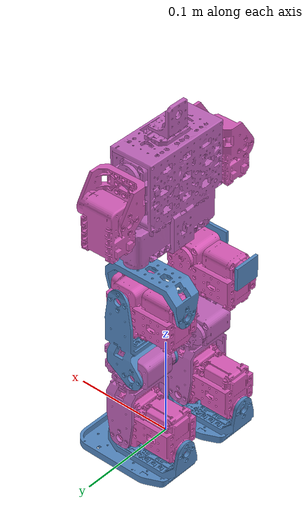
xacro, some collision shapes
<?xml version="1.0"?>
<robot xmlns:xacro="http://www.ros.org/wiki/xacro" name="bioloid">
    <xacro:arg name="initial_positions_file" default="$(find alfan_robot_description)/bioloid/config/initial_positions.yaml" />

    <xacro:include filename="bioloid.urdf" />
    <xacro:include filename="bioloid.ros2_control.xacro" />

    <xacro:bioloid_ros2_control name="GazeboROS2" initial_positions_file="$(arg initial_positions_file)"/>

    <gazebo>
        <plugin filename="ign_ros2_control-system" name="ign_ros2_control::IgnitionROS2ControlPlugin">
            <parameters>$(find alfan_robot_description)/bioloid/config/ros2_controllers.yaml</parameters>
        </plugin>
    </gazebo>

    <xacro:macro name="foot_friction" params="link_name">
        <gazebo reference="${link_name}">
            <mu1>100.0</mu1>
            <mu2>100.0</mu2>
            <kp>1000000.0</kp>
            <kd>100.0</kd>
            <minDepth>0.001</minDepth>
        </gazebo>
    </xacro:macro>

    <xacro:foot_friction link_name="l_sole"/>
    <xacro:foot_friction link_name="r_sole"/>
</robot>

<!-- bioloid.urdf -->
<!-- Generated using onshape-to-robot -->
<!-- Onshape https://cad.onshape.com/documents/1c182306dbc4101e18ae5ca0/w/b74496f5b7503cb5494d98c0/e/4ab3c407fbcfb1f86902050d -->
<robot name="bioloid">
  <!-- Dummy base link -->
  <link name="base_link"></link>

  <joint name="base_link_to_body" type="fixed">
    <parent link="base_link"/>
    <child link="body"/>
    <origin xyz="0 0 0" rpy="0 0 0"/>
  </joint>

  <!-- Link body -->
  <link name="body">
    <inertial>
      <origin xyz="-0.00120188 -4.0722e-07 0.266324" rpy="0 0 0"/>
      <mass value="0.303775"/>
      <inertia ixx="0.000572103" ixy="-1.63329e-07" ixz="2.25209e-06" iyy="0.000354825" iyz="-4.256e-09" izz="0.000287296"/>
    </inertial>
    <!-- Part body_parts -->
    <collision>
      <origin xyz="-0.00111963 0.0289345 0.28962" rpy="0 0 3.14159"/>
      <geometry>
        <box size="0.0320858 0.0399725 0.0485"/>
      </geometry>
    </collision>
    <collision>
      <origin xyz="-0.00113443 -0.0289345 0.28962" rpy="-0 -0 -0"/>
      <geometry>
        <box size="0.0320858 0.0399725 0.0485"/>
      </geometry>
    </collision>
    <collision>
      <origin xyz="-0.015627 -0 0.231855" rpy="-1.5708 0 1.5708"/>
      <geometry>
        <box size="0.025 0.0381517 0.009"/>
      </geometry>
    </collision>
    <collision>
      <origin xyz="0.013373 -0 0.231885" rpy="1.5708 0 1.5708"/>
      <geometry>
        <box size="0.025 0.0381517 0.009"/>
      </geometry>
    </collision>
    <collision>
      <origin xyz="-0.00188943 4.025e-05 0.31937" rpy="-0 0 1.5708"/>
      <geometry>
        <box size="0.0901071 0.042557 0.003"/>
      </geometry>
    </collision>
    <collision>
      <origin xyz="-0.021627 -1.65e-06 0.287876" rpy="1.5708 -0 -1.5708"/>
      <geometry>
        <box size="0.0900599 0.0660896 0.003"/>
      </geometry>
    </collision>
    <collision>
      <origin xyz="-0.015627 0.0280155 0.28787" rpy="-0 -1.5708 0"/>
      <geometry>
        <box size="0.025 0.0381517 0.009"/>
      </geometry>
    </collision>
    <collision>
      <origin xyz="-0.00111963 0.02575 0.230935" rpy="1.5708 0 3.14159"/>
      <geometry>
        <box size="0.0320858 0.0399725 0.0485"/>
      </geometry>
    </collision>
    <collision>
      <origin xyz="-0.00161443 -1.3e-05 0.33987" rpy="-3.14159 0 3.14159"/>
      <geometry>
        <box size="0.0241194 0.0240894 0.03"/>
      </geometry>
    </collision>
    <collision>
      <origin xyz="-0.015627 -0.0279846 0.28787" rpy="-0 -1.5708 0"/>
      <geometry>
        <box size="0.025 0.0381517 0.009"/>
      </geometry>
    </collision>
    <collision>
      <origin xyz="0.013373 -0.0280155 0.28787" rpy="3.14159 -1.5708 0"/>
      <geometry>
        <box size="0.025 0.0381517 0.009"/>
      </geometry>
    </collision>
    <collision>
      <origin xyz="-0.00113443 -0.02575 0.230935" rpy="1.5708 -0 -0"/>
      <geometry>
        <box size="0.0320858 0.0399725 0.0485"/>
      </geometry>
    </collision>
    <collision>
      <origin xyz="-0.00116153 1.5e-06 0.25637" rpy="3.14159 0 1.5708"/>
      <geometry>
        <box size="0.0900476 0.0440744 0.003"/>
      </geometry>
    </collision>
    <collision>
      <origin xyz="0.019373 -9.6e-06 0.28788" rpy="1.5708 0 1.5708"/>
      <geometry>
        <box size="0.0900478 0.0660478 0.003"/>
      </geometry>
    </collision>
    <collision>
      <origin xyz="0.013373 0.0279846 0.28787" rpy="3.14159 -1.5708 0"/>
      <geometry>
        <box size="0.025 0.0381517 0.009"/>
      </geometry>
    </collision>
    <visual>
      <origin xyz="-0.00120188 -4.0722e-07 0.266324" rpy="0 -0 0"/>
      <geometry>
        <mesh filename="file://$(find alfan_robot_description)/bioloid/mesh/body_visual.stl"/>
      </geometry>
      <material name="body_parts_material">
        <color rgba="0.745822 0.387408 0.72454 1"/>
      </material>
    </visual>
  </link>
  <!-- Link fp04_f5x -->
  <link name="fp04_f5x">
    <inertial>
      <origin xyz="-0.0164849 -2.32967e-06 -0.010064" rpy="0 0 0"/>
      <mass value="0.0119051"/>
      <inertia ixx="2.25504e-06" ixy="-3.9e-11" ixz="-8.4526e-08" iyy="1.1241e-05" iyz="1.57e-10" izz="1.07465e-05"/>
    </inertial>
    <!-- Part fp04_f5x_parts -->
    <collision>
      <origin xyz="-0.05475 -0.0004626 -0.028525" rpy="-1.5708 0 1.5708"/>
      <geometry>
        <box size="0.0270748 0.0230499 0.003"/>
      </geometry>
    </collision>
    <collision>
      <origin xyz="0.02075 -0 -0.0284861" rpy="1.5708 0 1.5708"/>
      <geometry>
        <box size="0.028 0.0229723 0.003"/>
      </geometry>
    </collision>
    <collision>
      <origin xyz="-0.0170048 -8.4e-06 -0.0085" rpy="0 0 1.5708"/>
      <geometry>
        <box size="0.0281538 0.0785552 0.017"/>
      </geometry>
    </collision>
    <visual>
      <origin xyz="-0.0164849 -2.32967e-06 -0.010064" rpy="-0 0 0"/>
      <geometry>
        <mesh filename="file://$(find alfan_robot_description)/bioloid/mesh/fp04_f5x_visual.stl"/>
      </geometry>
      <material name="fp04_f5x_parts_material">
        <color rgba="0.32549 0.529412 0.752941 1"/>
      </material>
    </visual>
  </link>
  <!-- Link l_hip_block -->
  <link name="l_hip_block">
    <inertial>
      <origin xyz="-0.000453911 -0.0127839 0.0365969" rpy="0 0 0"/>
      <mass value="0.121692"/>
      <inertia ixx="6.79791e-05" ixy="1.59902e-07" ixz="9.53699e-07" iyy="5.80918e-05" iyz="-4.02641e-07" izz="3.26705e-05"/>
    </inertial>
    <!-- Part l_hip_block_parts -->
    <collision>
      <origin xyz="-0.00093455 -0.01275 0.0528626" rpy="-1.5708 -1.5708 0"/>
      <geometry>
        <box size="0.0320858 0.0399725 0.0485"/>
      </geometry>
    </collision>
    <collision>
      <origin xyz="7.4e-06 -0.01275 0.0199355" rpy="1.5708 0 3.14159"/>
      <geometry>
        <box size="0.0320858 0.0399725 0.0485"/>
      </geometry>
    </collision>
    <visual>
      <origin xyz="-0.000453911 -0.0127839 0.0365969" rpy="-1.5708 -1.5708 0"/>
      <geometry>
        <mesh filename="file://$(find alfan_robot_description)/bioloid/mesh/l_hip_block_visual.stl"/>
      </geometry>
      <material name="l_hip_block_parts_material">
        <color rgba="0.850118 0.352173 0.717493 1"/>
      </material>
    </visual>
  </link>
  <!-- Link l_hip_to_knee -->
  <link name="l_hip_to_knee">
    <inertial>
      <origin xyz="-0.0433631 -0.00102425 0.0210296" rpy="0 0 0"/>
      <mass value="0.0231462"/>
      <inertia ixx="1.05716e-05" ixy="-9.76682e-07" ixz="2.1584e-08" iyy="1.91767e-05" iyz="9.213e-09" izz="1.27012e-05"/>
    </inertial>
    <!-- Part l_hip_to_knee_parts -->
    <collision>
      <origin xyz="-0.0213674 2.325e-05 -0.0015" rpy="-3.14159 -0 0"/>
      <geometry>
        <box size="0.0647975 0.0291169 0.003"/>
      </geometry>
    </collision>
    <collision>
      <origin xyz="-0.0213559 4.28e-05 0.0435" rpy="0 -0 0"/>
      <geometry>
        <box size="0.0648201 0.0290856 0.003"/>
      </geometry>
    </collision>
    <collision>
      <origin xyz="-0.04585 -3.085e-05 0.0210432" rpy="0 -1.5708 0"/>
      <geometry>
        <box size="0.0480903 0.0290617 0.0157"/>
      </geometry>
    </collision>
    <collision>
      <origin xyz="-0.0545 -0.0013278 0.0209309" rpy="-3.14159 -1.5708 0"/>
      <geometry>
        <box size="0.0483203 0.0276556 0.005"/>
      </geometry>
    </collision>
    <collision>
      <origin xyz="-0.0715293 -0.0065266 -0.0015" rpy="-3.14159 0 -3.14159"/>
      <geometry>
        <box size="0.0290586 0.0380532 0.003"/>
      </geometry>
    </collision>
    <collision>
      <origin xyz="-0.071555 -0.006504 0.0435" rpy="0 0 -3.14159"/>
      <geometry>
        <box size="0.0291101 0.038008 0.003"/>
      </geometry>
    </collision>
    <visual>
      <origin xyz="-0.0433631 -0.00102425 0.0210296" rpy="1.5708 -0 1.5708"/>
      <geometry>
        <mesh filename="file://$(find alfan_robot_description)/bioloid/mesh/l_hip_to_knee_visual.stl"/>
      </geometry>
      <material name="l_hip_to_knee_parts_material">
        <color rgba="0.32549 0.529412 0.752941 1"/>
      </material>
    </visual>
  </link>
  <!-- Link l_tibia -->
  <link name="l_tibia">
    <inertial>
      <origin xyz="-0.00969738 0.0133445 0.0201093" rpy="0 0 0"/>
      <mass value="0.0748651"/>
      <inertia ixx="2.35681e-05" ixy="1.14448e-06" ixz="5.48612e-07" iyy="4.15403e-05" iyz="-1.7789e-07" izz="4.13557e-05"/>
    </inertial>
    <!-- Part l_tibia_parts -->
    <collision>
      <origin xyz="-7.4e-06 0.01275 0.0199355" rpy="1.5708 0 -0"/>
      <geometry>
        <box size="0.0320858 0.0399725 0.0485"/>
      </geometry>
    </collision>
    <collision>
      <origin xyz="-0.0536326 0.0145232 0.04337" rpy="0 0 -3.14159"/>
      <geometry>
        <box size="0.0647975 0.0291169 0.003"/>
      </geometry>
    </collision>
    <collision>
      <origin xyz="-0.053644 0.0145428 -0.00163" rpy="-3.14159 0 -3.14159"/>
      <geometry>
        <box size="0.0648201 0.0290856 0.003"/>
      </geometry>
    </collision>
    <collision>
      <origin xyz="-0.02915 0.0144692 0.0208269" rpy="-0 1.5708 0"/>
      <geometry>
        <box size="0.0480903 0.0290617 0.0157"/>
      </geometry>
    </collision>
    <collision>
      <origin xyz="-0.0145 0.0145 0.0208854" rpy="1.5708 -0 -1.5708"/>
      <geometry>
        <box size="0.025 0.0381517 0.009"/>
      </geometry>
    </collision>
    <visual>
      <origin xyz="-0.00969738 0.0133445 0.0201093" rpy="1.5708 -0 1.5708"/>
      <geometry>
        <mesh filename="file://$(find alfan_robot_description)/bioloid/mesh/l_tibia_visual.stl"/>
      </geometry>
      <material name="l_tibia_parts_material">
        <color rgba="0.751878 0.385362 0.724131 1"/>
      </material>
    </visual>
  </link>
  <!-- Link l_ankle_block -->
  <link name="l_ankle_block">
    <inertial>
      <origin xyz="0.0127839 -0.0162449 0.0203879" rpy="0 0 0"/>
      <mass value="0.121692"/>
      <inertia ixx="5.82e-05" ixy="3.74759e-07" ixz="-1.3202e-07" iyy="3.26673e-05" iyz="8.98168e-07" izz="6.80905e-05"/>
    </inertial>
    <!-- Part l_ankle_block_parts -->
    <collision>
      <origin xyz="0.01275 7.4e-06 0.0199355" rpy="1.5708 -0 -1.5708"/>
      <geometry>
        <box size="0.0320858 0.0399725 0.0485"/>
      </geometry>
    </collision>
    <collision>
      <origin xyz="0.01275 -0.0329345 0.0208626" rpy="-0 -1.5708 0"/>
      <geometry>
        <box size="0.0320858 0.0399725 0.0485"/>
      </geometry>
    </collision>
    <visual>
      <origin xyz="0.0127839 -0.0162449 0.0203879" rpy="1.5708 -0 1.5708"/>
      <geometry>
        <mesh filename="file://$(find alfan_robot_description)/bioloid/mesh/l_ankle_block_visual.stl"/>
      </geometry>
      <material name="l_ankle_block_parts_material">
        <color rgba="0.850118 0.352173 0.717493 1"/>
      </material>
    </visual>
  </link>
  <!-- Link l_sole -->
  <link name="l_sole">
    <inertial>
      <origin xyz="8.12943e-07 -0.0258295 0.0485395" rpy="0 0 0"/>
      <mass value="0.033975"/>
      <inertia ixx="3.30012e-05" ixy="2e-12" ixz="3.78e-10" iyy="3.93212e-05" iyz="1.50405e-06" izz="1.09902e-05"/>
    </inertial>
    <!-- Part l_sole_parts -->
    <collision>
      <origin xyz="0.0004626 -0.00047505 -0.0015" rpy="3.14159 -0 -3.14159"/>
      <geometry>
        <box size="0.0270748 0.0230499 0.003"/>
      </geometry>
    </collision>
    <collision>
      <origin xyz="0 -0.00051385 0.074" rpy="-0 -0 -3.14159"/>
      <geometry>
        <box size="0.028 0.0229723 0.003"/>
      </geometry>
    </collision>
    <collision>
      <origin xyz="8.4e-06 -0.0205 0.0362452" rpy="-1.5708 -0 -3.14159"/>
      <geometry>
        <box size="0.0281538 0.0785552 0.017"/>
      </geometry>
    </collision>
    <collision>
      <origin xyz="-1.42e-05 -0.02775 0.0532916" rpy="1.5708 1.5708 0"/>
      <geometry>
        <box size="0.100134 0.0602914 0.0085"/>
      </geometry>
    </collision>
    <visual>
      <origin xyz="8.12943e-07 -0.0258295 0.0485395" rpy="-1.5708 -1.5708 0"/>
      <geometry>
        <mesh filename="file://$(find alfan_robot_description)/bioloid/mesh/l_sole_visual.stl"/>
      </geometry>
      <material name="l_sole_parts_material">
        <color rgba="0.32549 0.529412 0.752941 1"/>
      </material>
    </visual>
  </link>
  <!-- Joint from l_ankle_block to l_sole -->
  <joint name="l_ankle_roll" type="revolute">
    <origin xyz="-0 -0.05287 0.02087" rpy="-1.5708 -1.5708 0"/>
    <parent link="l_ankle_block"/>
    <child link="l_sole"/>
    <axis xyz="0 0 1"/>
    <limit effort="10" velocity="10" lower="-1.01229" upper="1.01229"/>
  </joint>
  <!-- Joint from l_tibia to l_ankle_block -->
  <joint name="l_ankle_pitch" type="revolute">
    <origin xyz="-0.075 0.0145 -0.00013" rpy="-0 -0 -0"/>
    <parent link="l_tibia"/>
    <child link="l_ankle_block"/>
    <axis xyz="0 0 1"/>
    <limit effort="10" velocity="10" lower="-1.5708" upper="0.436332"/>
  </joint>
  <!-- Joint from l_hip_to_knee to l_tibia -->
  <joint name="l_knee" type="revolute">
    <origin xyz="-0.075 -0.0145 -0" rpy="-0 0 -0"/>
    <parent link="l_hip_to_knee"/>
    <child link="l_tibia"/>
    <axis xyz="0 0 1"/>
    <limit effort="10" velocity="10" lower="0" upper="2.61799"/>
  </joint>
  <!-- Joint from l_hip_block to l_hip_to_knee -->
  <joint name="l_hip_pitch" type="revolute">
    <origin xyz="-0.02087 0 0.05287" rpy="1.5708 0 1.5708"/>
    <parent link="l_hip_block"/>
    <child link="l_hip_to_knee"/>
    <axis xyz="0 0 1"/>
    <limit effort="10" velocity="10" lower="-2.35619" upper="0.436332"/>
  </joint>
  <!-- Joint from fp04_f5x to l_hip_block -->
  <joint name="l_hip_roll" type="revolute">
    <origin xyz="-0.05325 -0 -0.029" rpy="1.5708 4e-12 1.5708"/>
    <parent link="fp04_f5x"/>
    <child link="l_hip_block"/>
    <axis xyz="0 0 1"/>
    <limit effort="10" velocity="10" lower="-1.01229" upper="1.01229"/>
  </joint>
  <!-- Joint from body to fp04_f5x -->
  <joint name="l_hip_yaw" type="revolute">
    <origin xyz="-0.00112703 0.0385 0.211" rpy="0 -0 -0"/>
    <parent link="body"/>
    <child link="fp04_f5x"/>
    <axis xyz="0 0 1"/>
    <limit effort="10" velocity="10" lower="-1.5708" upper="0.959931"/>
  </joint>
  <!-- Link fp04_f5x_2 -->
  <link name="fp04_f5x_2">
    <inertial>
      <origin xyz="-0.0164849 -2.32967e-06 -0.010064" rpy="0 0 0"/>
      <mass value="0.0119051"/>
      <inertia ixx="2.25504e-06" ixy="-3.9e-11" ixz="-8.4526e-08" iyy="1.1241e-05" iyz="1.57e-10" izz="1.07465e-05"/>
    </inertial>
    <!-- Part fp04_f5x_2_parts -->
    <collision>
      <origin xyz="-0.05475 -0.0004626 -0.028525" rpy="-1.5708 0 1.5708"/>
      <geometry>
        <box size="0.0270748 0.0230499 0.003"/>
      </geometry>
    </collision>
    <collision>
      <origin xyz="0.02075 0 -0.0284861" rpy="1.5708 0 1.5708"/>
      <geometry>
        <box size="0.028 0.0229723 0.003"/>
      </geometry>
    </collision>
    <collision>
      <origin xyz="-0.0170048 -8.4e-06 -0.0085" rpy="-0 0 1.5708"/>
      <geometry>
        <box size="0.0281538 0.0785552 0.017"/>
      </geometry>
    </collision>
    <visual>
      <origin xyz="-0.0164849 -2.32967e-06 -0.010064" rpy="0 0 0"/>
      <geometry>
        <mesh filename="file://$(find alfan_robot_description)/bioloid/mesh/fp04_f5x_2_visual.stl"/>
      </geometry>
      <material name="fp04_f5x_2_parts_material">
        <color rgba="0.32549 0.529412 0.752941 1"/>
      </material>
    </visual>
  </link>
  <!-- Link r_hip_block -->
  <link name="r_hip_block">
    <inertial>
      <origin xyz="0.000482063 -0.0127839 0.0366251" rpy="0 0 0"/>
      <mass value="0.121692"/>
      <inertia ixx="6.80905e-05" ixy="-1.3202e-07" ixz="-8.98168e-07" iyy="5.82e-05" iyz="-3.74759e-07" izz="3.26673e-05"/>
    </inertial>
    <!-- Part r_hip_block_parts -->
    <collision>
      <origin xyz="0.00093455 -0.01275 0.0528774" rpy="-1.5708 1.5708 0"/>
      <geometry>
        <box size="0.0320858 0.0399725 0.0485"/>
      </geometry>
    </collision>
    <collision>
      <origin xyz="7.4e-06 -0.01275 0.0199355" rpy="1.5708 0 3.14159"/>
      <geometry>
        <box size="0.0320858 0.0399725 0.0485"/>
      </geometry>
    </collision>
    <visual>
      <origin xyz="0.000482063 -0.0127839 0.0366251" rpy="-1.5708 -1.5708 0"/>
      <geometry>
        <mesh filename="file://$(find alfan_robot_description)/bioloid/mesh/r_hip_block_visual.stl"/>
      </geometry>
      <material name="r_hip_block_parts_material">
        <color rgba="0.850118 0.352173 0.717493 1"/>
      </material>
    </visual>
  </link>
  <!-- Link r_hip_to_knee -->
  <link name="r_hip_to_knee">
    <inertial>
      <origin xyz="-0.0433631 -0.00102425 -0.0209704" rpy="0 0 0"/>
      <mass value="0.0231462"/>
      <inertia ixx="1.05716e-05" ixy="-9.76682e-07" ixz="2.1584e-08" iyy="1.91767e-05" iyz="9.213e-09" izz="1.27012e-05"/>
    </inertial>
    <!-- Part r_hip_to_knee_parts -->
    <collision>
      <origin xyz="-0.0213674 2.325e-05 -0.0435" rpy="-3.14159 -0 -0"/>
      <geometry>
        <box size="0.0647975 0.0291169 0.003"/>
      </geometry>
    </collision>
    <collision>
      <origin xyz="-0.0213559 4.28e-05 0.0015" rpy="0 -0 -0"/>
      <geometry>
        <box size="0.0648201 0.0290856 0.003"/>
      </geometry>
    </collision>
    <collision>
      <origin xyz="-0.04585 -3.085e-05 -0.0209568" rpy="-0 -1.5708 0"/>
      <geometry>
        <box size="0.0480903 0.0290617 0.0157"/>
      </geometry>
    </collision>
    <collision>
      <origin xyz="-0.0545 -0.0013278 -0.0210691" rpy="-3.14159 -1.5708 0"/>
      <geometry>
        <box size="0.0483203 0.0276556 0.005"/>
      </geometry>
    </collision>
    <collision>
      <origin xyz="-0.0715293 -0.0065266 -0.0435" rpy="3.14159 0 -3.14159"/>
      <geometry>
        <box size="0.0290586 0.0380532 0.003"/>
      </geometry>
    </collision>
    <collision>
      <origin xyz="-0.071555 -0.006504 0.0015" rpy="-0 0 -3.14159"/>
      <geometry>
        <box size="0.0291101 0.038008 0.003"/>
      </geometry>
    </collision>
    <visual>
      <origin xyz="-0.0433631 -0.00102425 -0.0209704" rpy="1.5708 -0 1.5708"/>
      <geometry>
        <mesh filename="file://$(find alfan_robot_description)/bioloid/mesh/r_hip_to_knee_visual.stl"/>
      </geometry>
      <material name="r_hip_to_knee_parts_material">
        <color rgba="0.32549 0.529412 0.752941 1"/>
      </material>
    </visual>
  </link>
  <!-- Link r_tibia -->
  <link name="r_tibia">
    <inertial>
      <origin xyz="-0.00965162 0.0133445 -0.0201093" rpy="0 0 0"/>
      <mass value="0.0748651"/>
      <inertia ixx="2.35681e-05" ixy="1.11852e-06" ixz="-5.5332e-07" iyy="4.16065e-05" iyz="1.77886e-07" izz="4.14219e-05"/>
    </inertial>
    <!-- Part r_tibia_parts -->
    <collision>
      <origin xyz="7.4e-06 0.01275 -0.0199355" rpy="-1.5708 0 -3.14159"/>
      <geometry>
        <box size="0.0320858 0.0399725 0.0485"/>
      </geometry>
    </collision>
    <collision>
      <origin xyz="-0.0145 0.0145 -0.0208545" rpy="1.5708 -0 -1.5708"/>
      <geometry>
        <box size="0.025 0.0381517 0.009"/>
      </geometry>
    </collision>
    <collision>
      <origin xyz="-0.0536326 0.0145232 0.00163" rpy="-0 -0 3.14159"/>
      <geometry>
        <box size="0.0647975 0.0291169 0.003"/>
      </geometry>
    </collision>
    <collision>
      <origin xyz="-0.053644 0.0145428 -0.04337" rpy="3.14159 -0 3.14159"/>
      <geometry>
        <box size="0.0648201 0.0290856 0.003"/>
      </geometry>
    </collision>
    <collision>
      <origin xyz="-0.02915 0.0144692 -0.0209131" rpy="0 1.5708 0"/>
      <geometry>
        <box size="0.0480903 0.0290617 0.0157"/>
      </geometry>
    </collision>
    <visual>
      <origin xyz="-0.00965162 0.0133445 -0.0201093" rpy="1.5708 -0 1.5708"/>
      <geometry>
        <mesh filename="file://$(find alfan_robot_description)/bioloid/mesh/r_tibia_visual.stl"/>
      </geometry>
      <material name="r_tibia_parts_material">
        <color rgba="0.751878 0.385362 0.724131 1"/>
      </material>
    </visual>
  </link>
  <!-- Link r_ankle_block -->
  <link name="r_ankle_block">
    <inertial>
      <origin xyz="0.0127839 -0.0162731 -0.0204161" rpy="0 0 0"/>
      <mass value="0.121692"/>
      <inertia ixx="5.80918e-05" ixy="4.02641e-07" ixz="1.59902e-07" iyy="3.26705e-05" iyz="-9.53699e-07" izz="6.79791e-05"/>
    </inertial>
    <!-- Part r_ankle_block_parts -->
    <collision>
      <origin xyz="0.01275 -7.4e-06 -0.0199355" rpy="-1.5708 -0 1.5708"/>
      <geometry>
        <box size="0.0320858 0.0399725 0.0485"/>
      </geometry>
    </collision>
    <collision>
      <origin xyz="0.01275 -0.0329345 -0.0208774" rpy="-0 -1.5708 0"/>
      <geometry>
        <box size="0.0320858 0.0399725 0.0485"/>
      </geometry>
    </collision>
    <visual>
      <origin xyz="0.0127839 -0.0162731 -0.0204161" rpy="1.5708 -0 1.5708"/>
      <geometry>
        <mesh filename="file://$(find alfan_robot_description)/bioloid/mesh/r_ankle_block_visual.stl"/>
      </geometry>
      <material name="r_ankle_block_parts_material">
        <color rgba="0.850118 0.352173 0.717493 1"/>
      </material>
    </visual>
  </link>
  <!-- Link r_sole -->
  <link name="r_sole">
    <inertial>
      <origin xyz="8.12943e-07 0.0258295 -0.0485395" rpy="0 0 0"/>
      <mass value="0.033975"/>
      <inertia ixx="3.30012e-05" ixy="-2e-12" ixz="-3.78e-10" iyy="3.93212e-05" iyz="1.50405e-06" izz="1.09902e-05"/>
    </inertial>
    <!-- Part r_sole_parts -->
    <collision>
      <origin xyz="0.0004626 0.00047505 0.0015" rpy="-0 -0 3.14159"/>
      <geometry>
        <box size="0.0270748 0.0230499 0.003"/>
      </geometry>
    </collision>
    <collision>
      <origin xyz="0 0.00051385 -0.074" rpy="3.14159 -0 3.14159"/>
      <geometry>
        <box size="0.028 0.0229723 0.003"/>
      </geometry>
    </collision>
    <collision>
      <origin xyz="8.4e-06 0.0205 -0.0362452" rpy="1.5708 -0 3.14159"/>
      <geometry>
        <box size="0.0281538 0.0785552 0.017"/>
      </geometry>
    </collision>
    <collision>
      <origin xyz="-1.42e-05 0.02775 -0.0532916" rpy="-1.5708 -1.5708 0"/>
      <geometry>
        <box size="0.100134 0.0602914 0.0085"/>
      </geometry>
    </collision>
    <visual>
      <origin xyz="8.12943e-07 0.0258295 -0.0485395" rpy="1.5708 1.5708 0"/>
      <geometry>
        <mesh filename="file://$(find alfan_robot_description)/bioloid/mesh/r_sole_visual.stl"/>
      </geometry>
      <material name="r_sole_parts_material">
        <color rgba="0.32549 0.529412 0.752941 1"/>
      </material>
    </visual>
  </link>
  <!-- Joint from r_ankle_block to r_sole -->
  <joint name="r_ankle_roll" type="revolute">
    <origin xyz="0 -0.05287 -0.02087" rpy="1.5708 -1.5708 0"/>
    <parent link="r_ankle_block"/>
    <child link="r_sole"/>
    <axis xyz="0 0 1"/>
    <limit effort="10" velocity="10" lower="-1.01229" upper="1.01229"/>
  </joint>
  <!-- Joint from r_tibia to r_ankle_block -->
  <joint name="r_ankle_pitch" type="revolute">
    <origin xyz="-0.075 0.0145 0.00013" rpy="0 -0 -0"/>
    <parent link="r_tibia"/>
    <child link="r_ankle_block"/>
    <axis xyz="0 0 1"/>
    <limit effort="10" velocity="10" lower="-1.5708" upper="0.436332"/>
  </joint>
  <!-- Joint from r_hip_to_knee to r_tibia -->
  <joint name="r_knee" type="revolute">
    <origin xyz="-0.075 -0.0145 -0" rpy="0 -0 0"/>
    <parent link="r_hip_to_knee"/>
    <child link="r_tibia"/>
    <axis xyz="0 0 1"/>
    <limit effort="10" velocity="10" lower="0" upper="2.61799"/>
  </joint>
  <!-- Joint from r_hip_block to r_hip_to_knee -->
  <joint name="r_hip_pitch" type="revolute">
    <origin xyz="0.02087 -0 0.05287" rpy="1.5708 0 1.5708"/>
    <parent link="r_hip_block"/>
    <child link="r_hip_to_knee"/>
    <axis xyz="0 0 1"/>
    <limit effort="10" velocity="10" lower="-2.35619" upper="0.436332"/>
  </joint>
  <!-- Joint from fp04_f5x_2 to r_hip_block -->
  <joint name="r_hip_roll" type="revolute">
    <origin xyz="-0.05325 -0 -0.029" rpy="1.5708 -0 1.5708"/>
    <parent link="fp04_f5x_2"/>
    <child link="r_hip_block"/>
    <axis xyz="0 0 1"/>
    <limit effort="10" velocity="10" lower="-1.01229" upper="1.01229"/>
  </joint>
  <!-- Joint from body to fp04_f5x_2 -->
  <joint name="r_hip_yaw" type="revolute">
    <origin xyz="-0.00112703 -0.0385 0.211" rpy="-0 -0 -0"/>
    <parent link="body"/>
    <child link="fp04_f5x_2"/>
    <axis xyz="0 0 1"/>
    <limit effort="10" velocity="10" lower="-0.959931" upper="1.5708"/>
  </joint>
  <!-- Link r_hand_roll -->
  <link name="r_hand">
    <inertial>
      <origin xyz="-0.0320422 0.00101658 -0.0213463" rpy="0 0 0"/>
      <mass value="0.0637274"/>
      <inertia ixx="1.37323e-05" ixy="5.5159e-08" ixz="-2.52724e-06" iyy="2.02241e-05" iyz="1.10957e-07" izz="2.38959e-05"/>
    </inertial>
    <!-- Part r_hand_roll_parts -->
    <collision>
      <origin xyz="-0.03525 0.00106455 -0.0230074" rpy="-3.14159 -1.5708 0"/>
      <geometry>
        <box size="0.0320858 0.0399725 0.0485"/>
      </geometry>
    </collision>
    <collision>
      <origin xyz="-0.0093278 -6.915e-05 -0.0025" rpy="0 0 1.5708"/>
      <geometry>
        <box size="0.0483203 0.0276556 0.005"/>
      </geometry>
    </collision>
    <collision>
      <origin xyz="-0.0145266 -0.0225 -0.0195293" rpy="1.5708 1.5708 0"/>
      <geometry>
        <box size="0.0290586 0.0380532 0.003"/>
      </geometry>
    </collision>
    <collision>
      <origin xyz="-0.014504 0.0225 -0.0195551" rpy="-1.5708 1.5708 0"/>
      <geometry>
        <box size="0.0291101 0.038008 0.003"/>
      </geometry>
    </collision>
    <visual>
      <origin xyz="-0.0320422 0.00101658 -0.0213463" rpy="1.5708 -0 1.5708"/>
      <geometry>
        <mesh filename="file://$(find alfan_robot_description)/bioloid/mesh/r_hand_roll_visual.stl"/>
      </geometry>
      <material name="r_hand_roll_parts_material">
        <color rgba="0.826398 0.360186 0.719096 1"/>
      </material>
    </visual>
  </link>
  <!-- Joint from body to r_hand_roll -->
  <joint name="r_hand_roll" type="revolute">
    <origin xyz="-0.00112703 -0.04887 0.30237" rpy="-1.5708 -1.5708 0"/>
    <parent link="body"/>
    <child link="r_hand"/>
    <axis xyz="0 0 1"/>
    <limit effort="10" velocity="10" lower="-3.14159" upper="3.14159"/>
  </joint>
  <!-- Link l_hand_roll -->
  <link name="l_hand">
    <inertial>
      <origin xyz="-0.0320422 0.000995128 0.0212925" rpy="0 0 0"/>
      <mass value="0.0637274"/>
      <inertia ixx="1.37235e-05" ixy="6.8204e-08" ixz="2.48825e-06" iyy="2.02126e-05" iyz="-1.04464e-07" izz="2.38987e-05"/>
    </inertial>
    <!-- Part l_hand_roll_parts -->
    <collision>
      <origin xyz="-0.03525 0.00106455 0.0229926" rpy="-3.14159 -1.5708 0"/>
      <geometry>
        <box size="0.0320858 0.0399725 0.0485"/>
      </geometry>
    </collision>
    <collision>
      <origin xyz="-0.0093278 6.915e-05 0.0025" rpy="3.14159 -0 -1.5708"/>
      <geometry>
        <box size="0.0483203 0.0276556 0.005"/>
      </geometry>
    </collision>
    <collision>
      <origin xyz="-0.0145266 0.0225 0.0195293" rpy="-1.5708 -1.5708 0"/>
      <geometry>
        <box size="0.0290586 0.0380532 0.003"/>
      </geometry>
    </collision>
    <collision>
      <origin xyz="-0.014504 -0.0225 0.0195551" rpy="1.5708 -1.5708 0"/>
      <geometry>
        <box size="0.0291101 0.038008 0.003"/>
      </geometry>
    </collision>
    <visual>
      <origin xyz="-0.0320422 0.000995128 0.0212925" rpy="1.5708 -0 1.5708"/>
      <geometry>
        <mesh filename="file://$(find alfan_robot_description)/bioloid/mesh/l_hand_roll_visual.stl"/>
      </geometry>
      <material name="l_hand_roll_parts_material">
        <color rgba="0.826398 0.360186 0.719096 1"/>
      </material>
    </visual>
  </link>
  <!-- Joint from body to l_hand_roll -->
  <joint name="l_hand_roll" type="revolute">
    <origin xyz="-0.00112703 0.04887 0.30237" rpy="-1.5708 -1.5708 0"/>
    <parent link="body"/>
    <child link="l_hand"/>
    <axis xyz="0 0 1"/>
    <limit effort="10" velocity="10" lower="-3.14159" upper="3.14159"/>
  </joint>

  <!-- 6 Axis IMU Sensor Link -->
  <link name="imu_link">
    <inertial>
      <mass value="0.001"/>
      <origin xyz="0 0 0" rpy="0 0 0"/>
      <inertia ixx="1e-09" ixy="0.0" ixz="0.0" iyy="1e-09" iyz="0.0" izz="1e-09"/>
    </inertial>
  </link>

  <joint name="imu_joint" type="fixed">
    <parent link="body"/>
    <child link="imu_link"/>
    <origin xyz="0.0 0.0 -0.0580833" rpy="0 0 1.5708"/>
  </joint>

  <gazebo reference="body">
    <sensor name="imu_sensor" type="imu">
      <pose>0.0 0.0 -0.0580833 0 0 1.5708</pose>
      <always_on>1</always_on>
      <update_rate>100</update_rate>
      <visualize>true</visualize>
      <topic>imu</topic>
    </sensor>
  </gazebo>

  <gazebo>
    <plugin filename="ignition-gazebo-imu-system" name="ignition::gazebo::systems::Imu"/>
  </gazebo>

  <gazebo reference="l_sole">
  <mu1>1.5</mu1>
  <mu2>1.5</mu2>
  <kp>1000000.0</kp>
  <kd>100.0</kd>
  <minDepth>0.001</minDepth>
  <maxVel>0.1</maxVel>
</gazebo>

<gazebo reference="r_sole">
  <mu1>1.5</mu1>
  <mu2>1.5</mu2>
  <kp>1000000.0</kp>
  <kd>100.0</kd>
  <minDepth>0.001</minDepth>
  <maxVel>0.1</maxVel>
</gazebo>
</robot>
